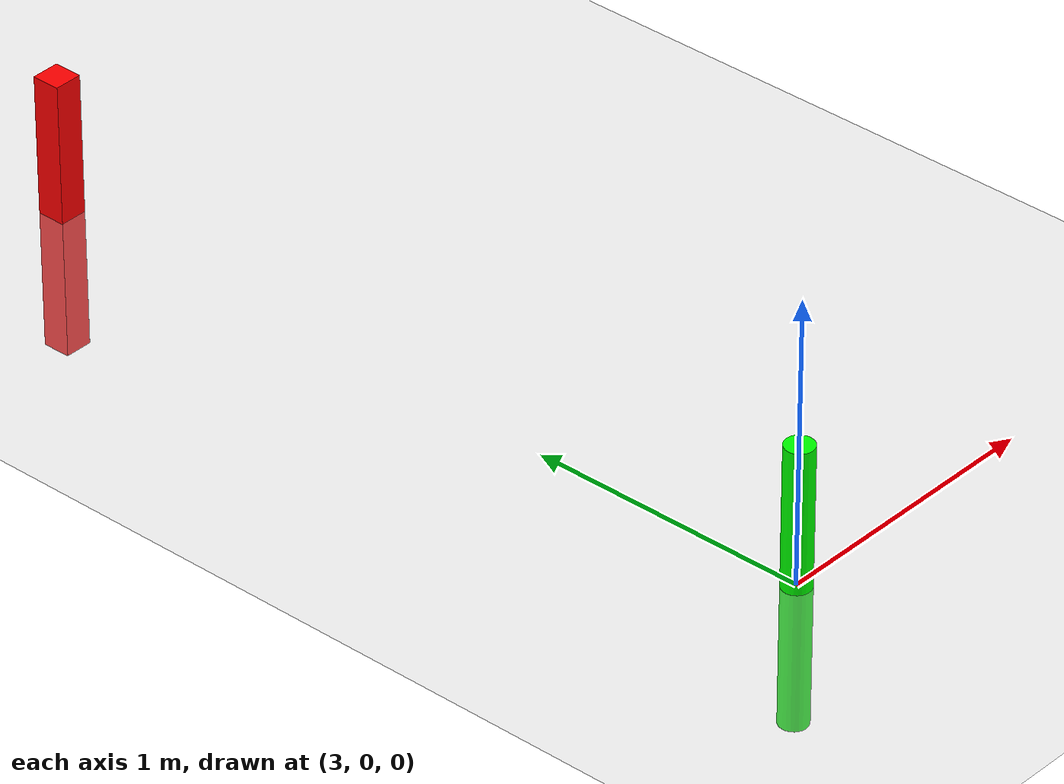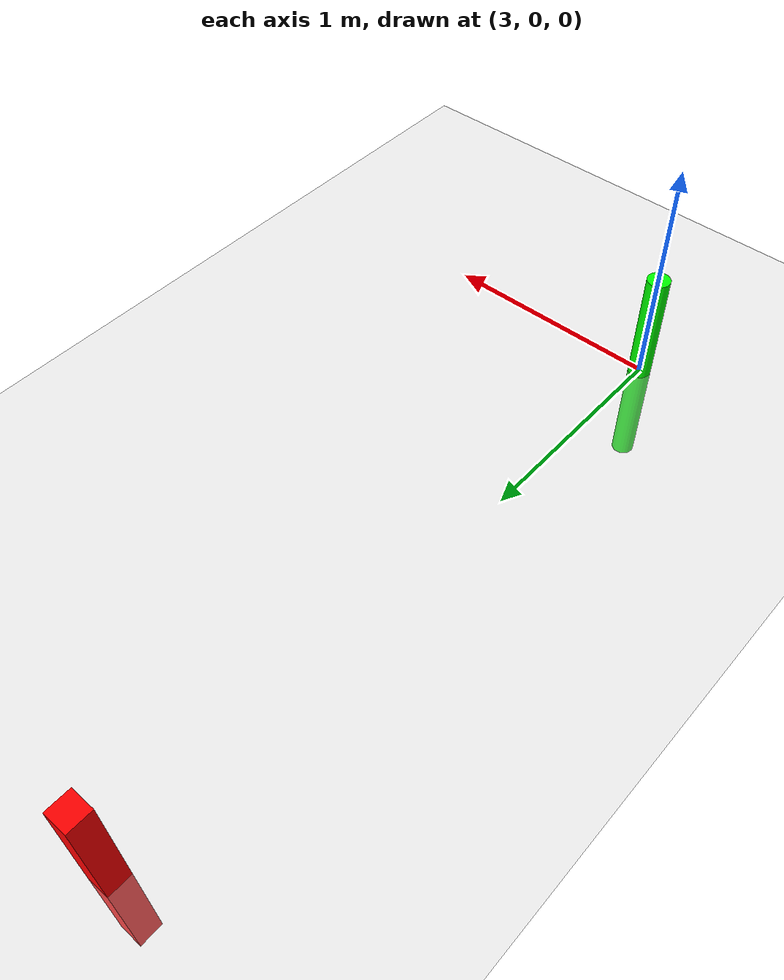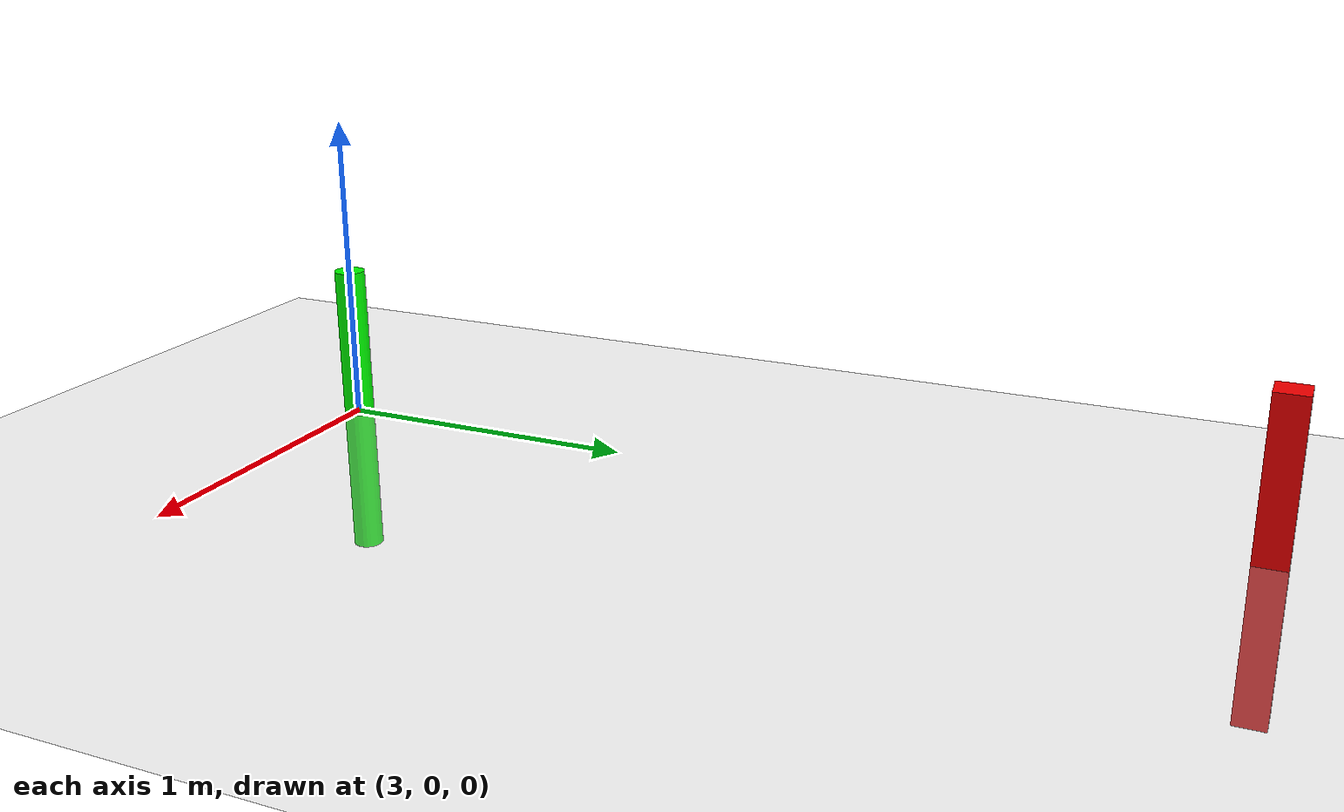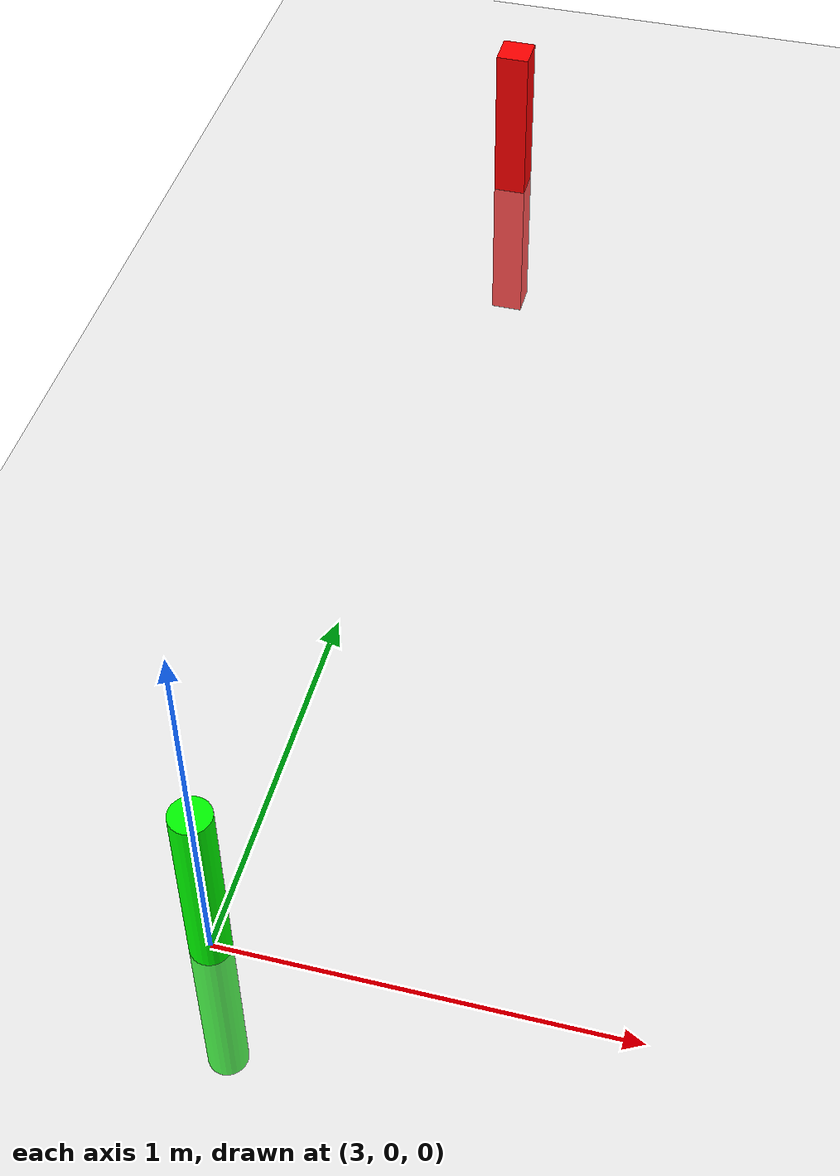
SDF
<?xml version="1.0" ?>
<sdf version="1.11">
  <world name="two_landmarks">

  <scene>
    <ambient>1.0 1.0 1.0</ambient>
    <background>0.8 0.8 0.8</background>
  </scene>

  <light type="directional" name="sun">
      <cast_shadows>true</cast_shadows>
      <pose>0 0 10 0 0 0</pose>
      <diffuse>0.8 0.8 0.8 1</diffuse>
      <specular>0.2 0.2 0.2 1</specular>
      <attenuation>
        <range>1000</range>
        <constant>0.9</constant>
        <linear>0.01</linear>
        <quadratic>0.001</quadratic>
      </attenuation>
      <direction>-0.5 0.1 -0.9</direction>
  </light>

    <model name="ground_plane">
      <static>true</static>
      <link name="link">
        <collision name="collision">
          <geometry>
            <plane>
              <normal>0 0 1</normal>
              <size>100 100</size>
            </plane>
          </geometry>
        </collision>
        <visual name="visual">
          <geometry>
            <plane>
              <normal>0 0 1</normal>
              <size>100 100</size>
            </plane>
          </geometry>
          <material>
            <ambient>0.8 0.8 0.8 1</ambient>
            <diffuse>0.8 0.8 0.8 1</diffuse>
            <specular>0.8 0.8 0.8 1</specular>
          </material>
        </visual>
      </link>
    </model>

  <model name="cylinder">
    <pose>3 0 0 0 0 0</pose>
    <link name="cylinder_link">
      <inertial>
        <inertia>
          <ixx>0.1458</ixx>
          <ixy>0</ixy>
          <ixz>0</ixz>
          <iyy>0.1458</iyy>
          <iyz>0</iyz>
          <izz>0.125</izz>
        </inertia>
        <mass>1.0</mass>
      </inertial>
      <collision name="cylinder_collision">
        <geometry>
          <cylinder>
            <radius>0.05</radius>
            <length>1.0</length>
          </cylinder>
        </geometry>
      </collision>

      <visual name="cylinder_visual">
        <geometry>
          <cylinder>
            <radius>0.05</radius>
            <length>1.0</length>
          </cylinder>
        </geometry>
        <material>
          <ambient>0 1 0 1</ambient>
          <diffuse>0 1 0 1</diffuse>
          <specular>0 1 0 1</specular>
        </material>
      </visual>
    </link>
  </model>

  <model name="prism">
    <pose>3 3 0 0 0 0</pose>
    <link name="box_link">
      <inertial>
        <inertia>
          <ixx>0.16666</ixx>
          <ixy>0</ixy>
          <ixz>0</ixz>
          <iyy>0.16666</iyy>
          <iyz>0</iyz>
          <izz>0.16666</izz>
        </inertia>
        <mass>1.0</mass>
      </inertial>
      <collision name="box_collision">
        <geometry>
          <box>
            <size>0.1 0.1 1</size>
          </box>
        </geometry>
      </collision>

      <visual name="box_visual">
        <geometry>
          <box>
            <size>0.1 0.1 1</size>
          </box>
        </geometry>
        <material>
          <ambient>1 0 0 1</ambient>
          <diffuse>1 0 0 1</diffuse>
          <specular>1 0 0 1</specular>
        </material>
      </visual>
    </link>
  </model>

  </world>
</sdf>
